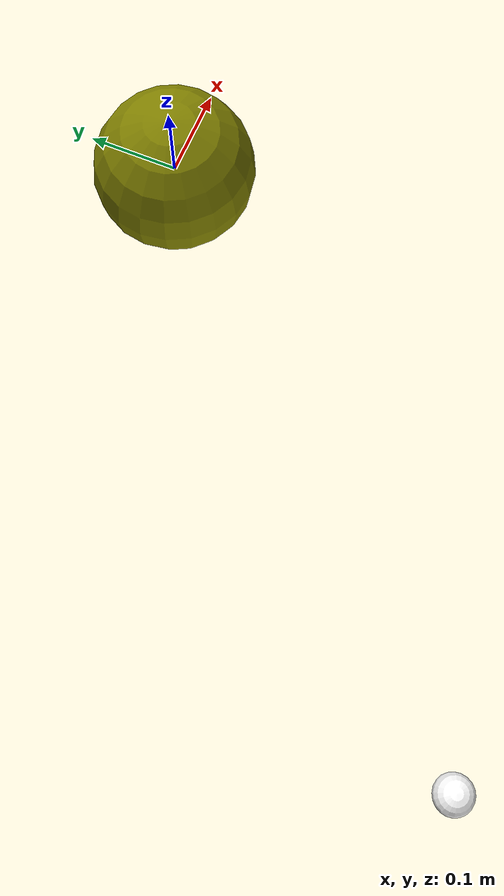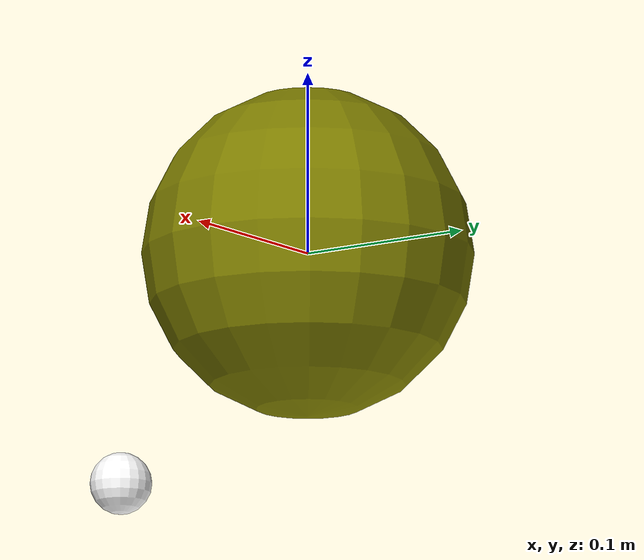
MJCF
<mujoco model='basic move'>
    <!-- This file is going to make the structure of a moving_hand -->
	<compiler inertiafromgeom='true' angle='degree'/>
    <default>
        <joint limited='true' damping='1' armature='0'/>
        <geom contype='1' conaffinity='1' condim='1' rgba='0.5 0.3 .4 1'
        	margin="0.001" solref=".02 1" solimp=".8 .8 .01"/>
        <motor ctrlrange='-.4 .4' ctrllimited='true'/>
		<!-- add some classes -->
    </default>

    <option timestep='0.002' iterations="50" tolerance="1e-10" solver="Newton" jacobian="dense" cone="elliptic"/>

    <size nstack="1000000"/>

    <visual>
	<!-- the visual part, which is not very important -->
        <map fogstart="3" fogend="5" force="0.1" znear="0.5"/>
        <quality shadowsize="2048" offsamples="8"/>
        <global offwidth="800" offheight="800"/>
		<!-- the size of the scenary -->
    </visual>

    <asset>
        <!-- asset is the predefined setting -->
		<texture type="skybox" builtin="gradient" width="128" height="128" rgb1=".4 .6 .8"
            rgb2="0 0 0"/>
        <texture name="texgeom" type="cube" builtin="flat" mark="cross" width="127" height="1278"
            rgb1="0.4 0.4 0.1" rgb2="0.5 0.5 0.1" markrgb="1 1 1" random="0.01"/>
        <texture name="texplane" type="2d" builtin="checker" rgb1=".2 .3 .4" rgb2=".1 0.15 0.2"
            width="512" height="512"/>
		<!-- the material is a more complicated structure -->
        <material name='MatPlane' reflectance='0.3' texture="texplane" texrepeat="1 1" texuniform="true"/>
    </asset>

    <worldbody>
		<!-- the light is bounded on a body-->
        <light mode='targetbodycom' target='ball' directional='false' castshadow='false'  diffuse='.8 .8 .8' specular='0.3 0.3 0.3' pos='1 1 4.0' dir='0 0 -1'/>
		<!-- structure for the hand first -->
		<body name='ball' pos='0.0 0.0 0.0'>
            <!-- transition free on this plane -->
			<joint name='slide1' type='slide' range='-1.0 1.0' axis='1 0 0' />
			<joint name='slide2' type='slide' range='-1.0 1.0' axis='0 1 0' />
			<geom type='sphere' size="0.04" rgba=".5 .0 .5 1"/>
		</body>
		<body name='slidebar' pos='0.0 0.0 0.0'>
			<geom type='sphere' size='0.09' rgba=".5 .5 .0 1"/>
			<site name='button' type='sphere' size='0.1' rgba='1 1 1 0'/>
			<!-- the button should free move -->
			<joint name='slide3' type='slide' range='-1.0 1.0' axis='1 0 0' />
			<joint name='slide4' type='slide' range='-1.0 1.0' axis='0 1 0' />
		</body>
		<!-- traffic light: -->
		<body name='traffic_light' pos='-0.5 -0.5 0.0'>
			<inertial pos= '0 0 0' mass='1000'/>
			<geom name='traffic_light' type='sphere' size='0.01' rgba='1 1 1 0' />
			<site name='traffic_light' type='sphere' size='0.02' rgba='1 1 1 1'/>
			<joint name='speed limit' type='slide' range='0.2 0.5' axis='1 0 0' />
		</body>

        <camera name="camera1" mode="fixed" pos="0 0 2.6" />
        <camera name="camera2" mode="fixed" pos="0 0.5 0" quat="0 0 1 1"/>
    </worldbody>
	<!-- body finished -->
	<sensor>
		<touch name='touch_button' site='button'/>
		<touch name='traffic_light' site='traffic_light'/>
	</sensor>
	<!-- actuator -->
    <actuator>
		<motor joint='slide1' name='slide1' ctrlrange='-0.5 0.5'/>
		<motor joint='slide2' name='slide2' ctrlrange='-0.5 0.5'/>
		<motor joint='speed limit' name='speed limit' ctrlrange='-0.3 0.3'/>
	</actuator>
</mujoco>
